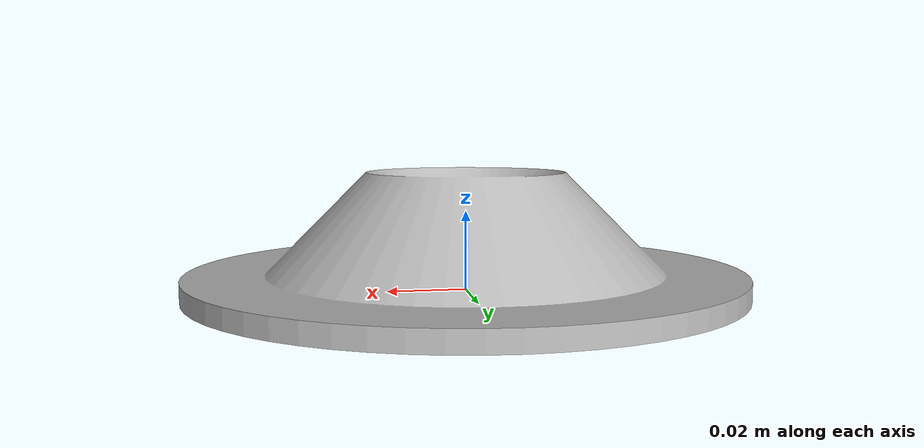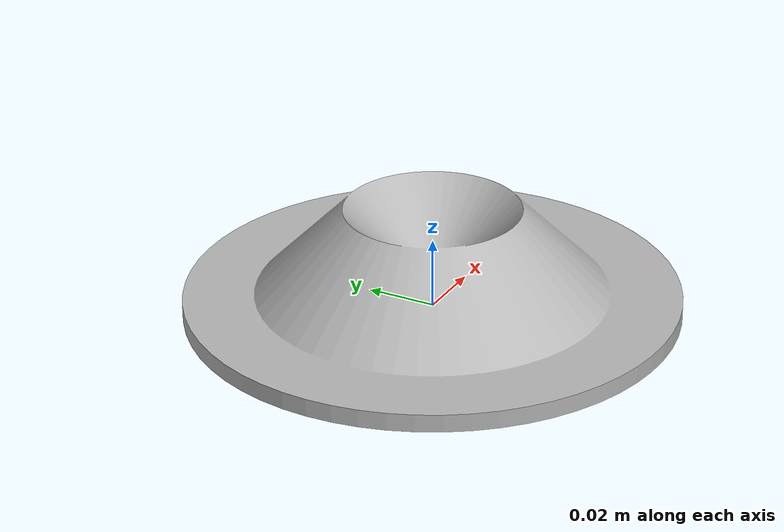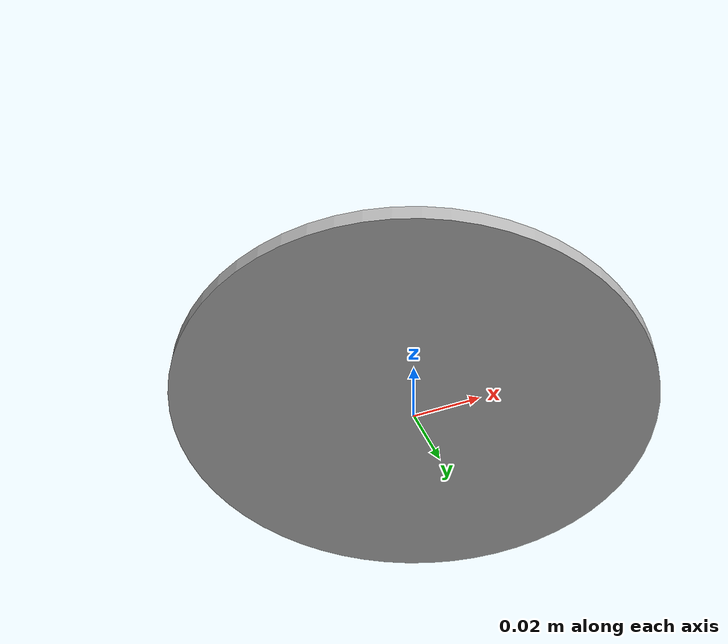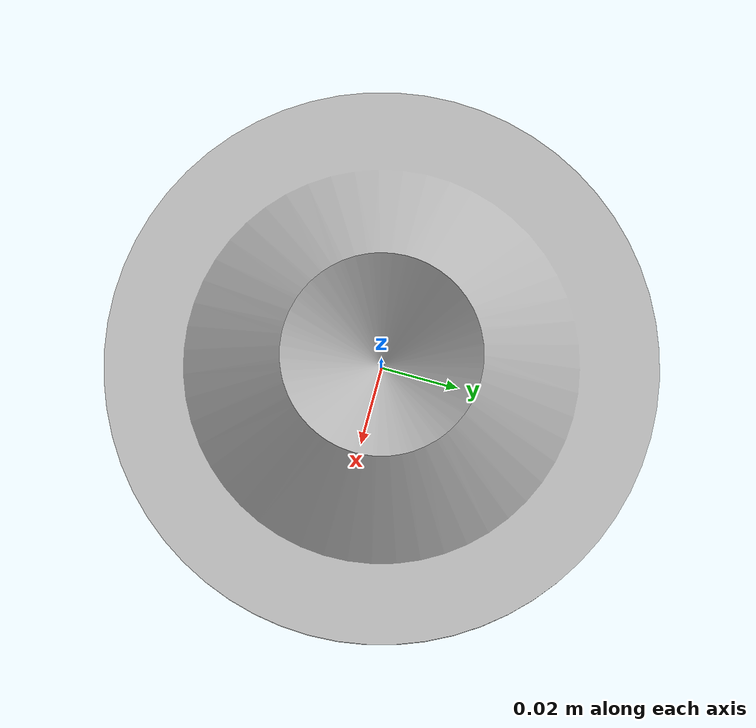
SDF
<?xml version="1.0"?>
<sdf version="1.6">
  <model name="vulcram">
    <pose>0 0 0.005 0 0 0</pose>
    <static>true</static>
    <link name="link">
      <inertial>
        <mass>1e-6</mass>
        <inertia> ixx="1e-6" iyy="1e-6" izz="1e-6" </inertia>
      </inertial>
      <collision name="collision">
        <geometry>
          <mesh>
            <uri>model://vulcram/meshes/vulcram.stl</uri>
          </mesh>
        </geometry>
      </collision>
      <visual name="visual">
        <geometry>
          <mesh>
            <uri>model://vulcram/meshes/vulcram.dae</uri>
          </mesh>
        </geometry>
      </visual>
    </link>
  </model>
</sdf>
